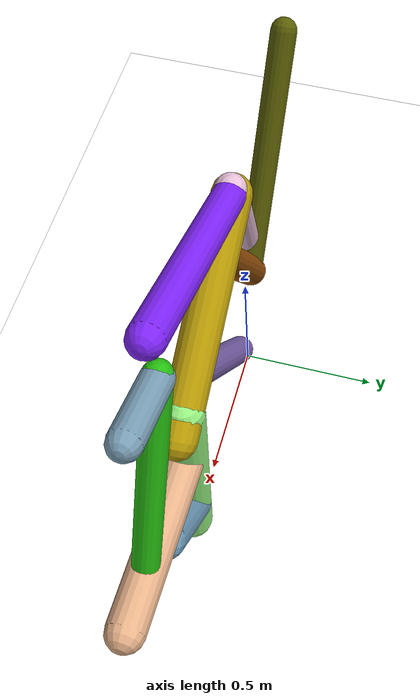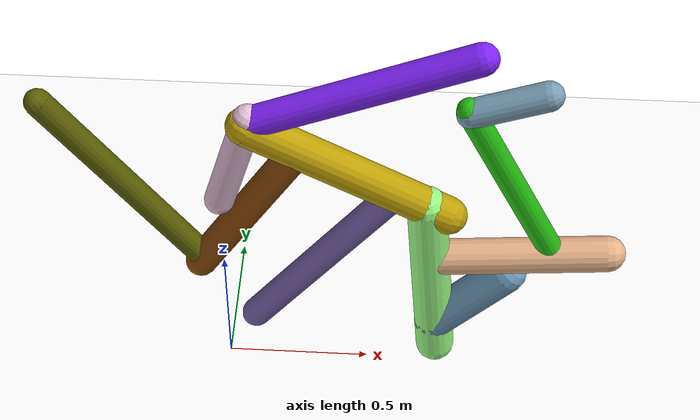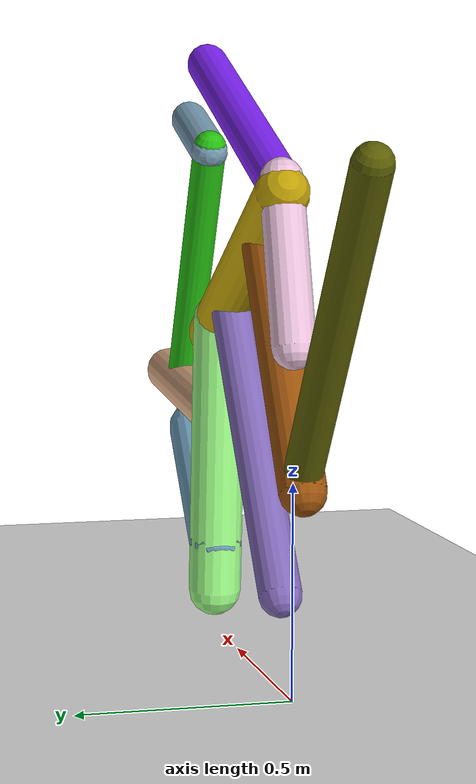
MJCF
<mujoco model="morphology">
  <option timestep="0.01"/>
  <default>
    <default class="/"/>
    <default class="0/"/>
    <default class="0/1/"/>
    <default class="0/2/"/>
    <default class="0/2/3/"/>
    <default class="0/2/3/4/"/>
    <default class="0/2/3/5/"/>
    <default class="0/2/3/5/6/"/>
    <default class="0/2/3/5/6/7/"/>
    <default class="0/2/8/"/>
    <default class="0/2/9/"/>
    <default class="0/2/9/10/"/>
  </default>
  <asset>
    <texture name="texplane" type="2d" builtin="checker" rgb1="0.10000000000000001 0.20000000000000001 0.29999999999999999" rgb2="0.20000000000000001 0.29999999999999999 0.40000000000000002" width="300" height="300"/>
    <material name="MatPlane" class="/" texture="texplane" texrepeat="20 20" specular="1" shininess="1" reflectance="0.5"/>
  </asset>
  <worldbody>
    <light name="//unnamed_light_0" class="/" directional="true" pos="0 0 1.5" dir="0 0 -1.3" cutoff="100" exponent="1" diffuse="1 1 1" specular="0.10000000000000001 0.10000000000000001 0.10000000000000001"/>
    <geom name="ground" class="/" type="plane" size="15 15 0.5" material="MatPlane" rgba="1 1 1 1"/>
    <site name="body" class="/" size="9.9999999999999995e-07 9.9999999999999995e-07 9.9999999999999995e-07" pos="0 0 0.80670527219772337"/>
    <body pos="0 0 0.80670527219772337" name="0/">
      <joint name="0/rootx/" class="/" type="slide" axis="1 0 0" limited="false" stiffness="0" armature="0" damping="0"/>
      <joint name="0/rootz/" class="/" type="slide" axis="0 0 1" limited="false" stiffness="0" armature="0" damping="0"/>
      <joint name="0/rooty/" class="/" type="hinge" axis="0 1 0" limited="false" stiffness="0" armature="0" damping="0"/>
      <geom name="0/geom" class="0/" type="capsule" contype="1" conaffinity="1" condim="3" size="0.051059157186214385" rgba="0.91006877623466564 0.75459937585810943 0.85668962362040246 1" friction="0.59999999999999998 0.10000000000000001 0.10000000000000001" fromto="0 0 0 0.10850914260324207 0 0.37177350365792972"/>
      <site name="0/end0" class="0/" size="0.0050000000000000001" pos="0.10850914260324207 0 0.37177350365792972"/>
      <site name="0/attach1" class="0/" size="9.9999999999999995e-07 9.9999999999999995e-07 9.9999999999999995e-07" pos="0.1033521343525365 0 0.35410458673755607"/>
      <body pos="0.1033521343525365 0 0.35410458673755607" name="0/1/">
        <geom name="0/1/geom" class="0/1/" type="capsule" contype="1" conaffinity="1" condim="3" size="0.052558314848162618" rgba="0.5019783202462037 0.13946834852514778 0.97946140792163505 1" friction="0.59999999999999998 0.10000000000000001 0.10000000000000001" fromto="0 0 0 0.72336851600292951 0 0.30708708282722741"/>
        <site name="0/1/end1" class="0/1/" size="0.0050000000000000001" pos="0.72336851600292951 0 0.30708708282722741"/>
      </body>
      <site name="0/attach2" class="0/" size="9.9999999999999995e-07 9.9999999999999995e-07 9.9999999999999995e-07" pos="0.099570412501628208 0 0.34114766948024544"/>
      <body pos="0.099570412501628208 0 0.34114766948024544" name="0/2/">
        <joint name="0/2/joint/" class="0/" type="hinge" axis="0 1 0" limited="true" range="-65.164724484775761 65.164724484775761"/>
        <geom name="0/2/geom" class="0/2/" type="capsule" contype="1" conaffinity="1" condim="3" size="0.064152282570693206" rgba="0.74964427233032127 0.6286979103751491 0.027112932324842021 1" friction="0.59999999999999998 0.10000000000000001 0.10000000000000001" fromto="0 0 0 0.66111752034530991 0 -0.37179453471949253"/>
        <site name="0/2/end2" class="0/2/" size="0.0050000000000000001" pos="0.66111752034530991 0 -0.37179453471949253"/>
        <site name="0/2/attach3" class="0/2/" size="9.9999999999999995e-07 9.9999999999999995e-07 9.9999999999999995e-07" pos="0.58943622002761487 0 -0.33148291858536616"/>
        <body pos="0.58943622002761487 0 -0.33148291858536616" name="0/2/3/">
          <joint name="0/2/3/joint/" class="0/2/" type="hinge" axis="0 1 0" limited="true" range="-54.132014779784328 54.132014779784328"/>
          <geom name="0/2/3/geom" class="0/2/3/" type="capsule" contype="1" conaffinity="1" condim="3" size="0.068062744351632468" rgba="0.60338443328204372 0.97264948793338479 0.51487659525975726 1" friction="0.59999999999999998 0.10000000000000001 0.10000000000000001" fromto="0 0 0 0.057916908912086784 0 -0.71637001446077653"/>
          <site name="0/2/3/end3" class="0/2/3/" size="0.0050000000000000001" pos="0.057916908912086784 0 -0.71637001446077653"/>
          <site name="0/2/3/attach4" class="0/2/3/" size="9.9999999999999995e-07 9.9999999999999995e-07 9.9999999999999995e-07" pos="0.047536170581810332 0 -0.58797142055339779"/>
          <body pos="0.047536170581810332 0 -0.58797142055339779" name="0/2/3/4/">
            <joint name="0/2/3/4/joint/" class="0/2/3/" type="hinge" axis="0 1 0" limited="true" range="-69.62798650819569 69.62798650819569"/>
            <geom name="0/2/3/4/geom" class="0/2/3/4/" type="capsule" contype="1" conaffinity="1" condim="3" size="0.069037416460927925" rgba="0.44010417028004423 0.62898945565500908 0.75169501844717179 1" friction="0.59999999999999998 0.10000000000000001 0.10000000000000001" fromto="0 0 0 0.23905224205368136 0 0.27156363500818981"/>
            <site name="0/2/3/4/end4" class="0/2/3/4/" size="0.0050000000000000001" pos="0.23905224205368136 0 0.27156363500818981"/>
          </body>
          <site name="0/2/3/attach5" class="0/2/3/" size="9.9999999999999995e-07 9.9999999999999995e-07 9.9999999999999995e-07" pos="0.020391435681706996 0 -0.25222017798556762"/>
          <body pos="0.020391435681706996 0 -0.25222017798556762" name="0/2/3/5/">
            <joint name="0/2/3/5/joint/" class="0/2/3/" type="hinge" axis="0 1 0" limited="true" range="-35.366997830366572 35.366997830366572"/>
            <geom name="0/2/3/5/geom" class="0/2/3/5/" type="capsule" contype="1" conaffinity="1" condim="3" size="0.062094534271930055" rgba="0.90554078637657454 0.70012177757483329 0.54207657519538344 1" friction="0.59999999999999998 0.10000000000000001 0.10000000000000001" fromto="0 0 0 0.59526814705801057 0 0.055712897662241745"/>
            <site name="0/2/3/5/end5" class="0/2/3/5/" size="0.0050000000000000001" pos="0.59526814705801057 0 0.055712897662241745"/>
            <site name="0/2/3/5/attach6" class="0/2/3/5/" size="9.9999999999999995e-07 9.9999999999999995e-07 9.9999999999999995e-07" pos="0.41782279982983661 0 0.039105265421841034"/>
            <body pos="0.41782279982983661 0 0.039105265421841034" name="0/2/3/5/6/">
              <joint name="0/2/3/5/6/joint/" class="0/2/3/5/" type="hinge" axis="0 1 0" limited="true" range="-39.160796430667418 39.160796430667418"/>
              <geom name="0/2/3/5/6/geom" class="0/2/3/5/6/" type="capsule" contype="1" conaffinity="1" condim="3" size="0.043030658252666193" rgba="0.14919216540020053 0.74920802388280416 0.067069370043554399 1" friction="0.59999999999999998 0.10000000000000001 0.10000000000000001" fromto="0 0 0 -0.32578423971981851 0 0.65096886681217203"/>
              <site name="0/2/3/5/6/end6" class="0/2/3/5/6/" size="0.0050000000000000001" pos="-0.32578423971981851 0 0.65096886681217203"/>
              <site name="0/2/3/5/6/attach7" class="0/2/3/5/6/" size="9.9999999999999995e-07 9.9999999999999995e-07 9.9999999999999995e-07" pos="-0.31997518307685258 0 0.6393614452150701"/>
              <body pos="-0.31997518307685258 0 0.6393614452150701" name="0/2/3/5/6/7/">
                <joint name="0/2/3/5/6/7/joint/" class="0/2/3/5/6/" type="hinge" axis="0 1 0" limited="true" range="-39.717195200593068 39.717195200593068"/>
                <geom name="0/2/3/5/6/7/geom" class="0/2/3/5/6/7/" type="capsule" contype="1" conaffinity="1" condim="3" size="0.048305743784982216" rgba="0.47764204797284093 0.62444519681491772 0.71471219029029798 1" friction="0.59999999999999998 0.10000000000000001 0.10000000000000001" fromto="0 0 0 0.23133196706370218 0 0.086777819905767162"/>
                <site name="0/2/3/5/6/7/end7" class="0/2/3/5/6/7/" size="0.0050000000000000001" pos="0.23133196706370218 0 0.086777819905767162"/>
              </body>
            </body>
          </body>
        </body>
        <site name="0/2/attach8" class="0/2/" size="9.9999999999999995e-07 9.9999999999999995e-07 9.9999999999999995e-07" pos="0.48742739620086356 0 -0.27411592705239285"/>
        <body pos="0.48742739620086356 0 -0.27411592705239285" name="0/2/8/">
          <geom name="0/2/8/geom" class="0/2/8/" type="capsule" contype="1" conaffinity="1" condim="3" size="0.051184233684521227" rgba="0.50899948323904132 0.41206886135107501 0.71968553649358558 1" friction="0.59999999999999998 0.10000000000000001 0.10000000000000001" fromto="0 0 0 -0.48428840076619117 0 -0.65172506162426447"/>
          <site name="0/2/8/end8" class="0/2/8/" size="0.0050000000000000001" pos="-0.48428840076619117 0 -0.65172506162426447"/>
        </body>
        <site name="0/2/attach9" class="0/2/" size="9.9999999999999995e-07 9.9999999999999995e-07 9.9999999999999995e-07" pos="0.16815469263693067 0 -0.09456563135279257"/>
        <body pos="0.16815469263693067 0 -0.09456563135279257" name="0/2/9/">
          <joint name="0/2/9/joint/" class="0/2/" type="hinge" axis="0 1 0" limited="true" range="-35.75574741039879 35.75574741039879"/>
          <geom name="0/2/9/geom" class="0/2/9/" type="capsule" contype="1" conaffinity="1" condim="3" size="0.054887614811661656" rgba="0.60816841875108452 0.32321207175560285 0.046636216220769522 1" friction="0.59999999999999998 0.10000000000000001 0.10000000000000001" fromto="0 0 0 -0.34666783339111529 0 -0.55988004383617285"/>
          <site name="0/2/9/end9" class="0/2/9/" size="0.0050000000000000001" pos="-0.34666783339111529 0 -0.55988004383617285"/>
          <site name="0/2/9/attach10" class="0/2/9/" size="9.9999999999999995e-07 9.9999999999999995e-07 9.9999999999999995e-07" pos="-0.33255281475623089 0 -0.53708382079250927"/>
          <body pos="-0.33255281475623089 0 -0.53708382079250927" name="0/2/9/10/">
            <joint name="0/2/9/10/joint/" class="0/2/9/" type="hinge" axis="0 1 0" limited="true" range="-63.762913190154507 63.762913190154507"/>
            <geom name="0/2/9/10/geom" class="0/2/9/10/" type="capsule" contype="1" conaffinity="1" condim="3" size="0.044834843520651986" rgba="0.35941916063414658 0.37003519973062393 0.017129825403907506 1" friction="0.59999999999999998 0.10000000000000001 0.10000000000000001" fromto="0 0 0 -0.4856697950927974 0 0.70026741112770385"/>
            <site name="0/2/9/10/end10" class="0/2/9/10/" size="0.0050000000000000001" pos="-0.4856697950927974 0 0.70026741112770385"/>
          </body>
        </body>
      </body>
      <camera name="0/side" class="0/" mode="trackcom" pos="0.40000000000000002 -4 0.20000000000000001" quat="0.70699999999999996 0.70699999999999996 0 0"/>
    </body>
  </worldbody>
  <actuator>
    <motor name="0/2/motor" class="0/2/" ctrllimited="true" ctrlrange="-1 1" gear="59" joint="0/2/joint/"/>
    <motor name="0/2/3/motor" class="0/2/3/" ctrllimited="true" ctrlrange="-1 1" gear="81" joint="0/2/3/joint/"/>
    <motor name="0/2/3/4/motor" class="0/2/3/4/" ctrllimited="true" ctrlrange="-1 1" gear="55" joint="0/2/3/4/joint/"/>
    <motor name="0/2/3/5/motor" class="0/2/3/5/" ctrllimited="true" ctrlrange="-1 1" gear="75" joint="0/2/3/5/joint/"/>
    <motor name="0/2/3/5/6/motor" class="0/2/3/5/6/" ctrllimited="true" ctrlrange="-1 1" gear="65" joint="0/2/3/5/6/joint/"/>
    <motor name="0/2/3/5/6/7/motor" class="0/2/3/5/6/7/" ctrllimited="true" ctrlrange="-1 1" gear="84" joint="0/2/3/5/6/7/joint/"/>
    <motor name="0/2/9/motor" class="0/2/9/" ctrllimited="true" ctrlrange="-1 1" gear="75" joint="0/2/9/joint/"/>
    <motor name="0/2/9/10/motor" class="0/2/9/10/" ctrllimited="true" ctrlrange="-1 1" gear="82" joint="0/2/9/10/joint/"/>
  </actuator>
  <sensor>
    <subtreelinvel name="velocity" body="0/"/>
  </sensor>
</mujoco>
